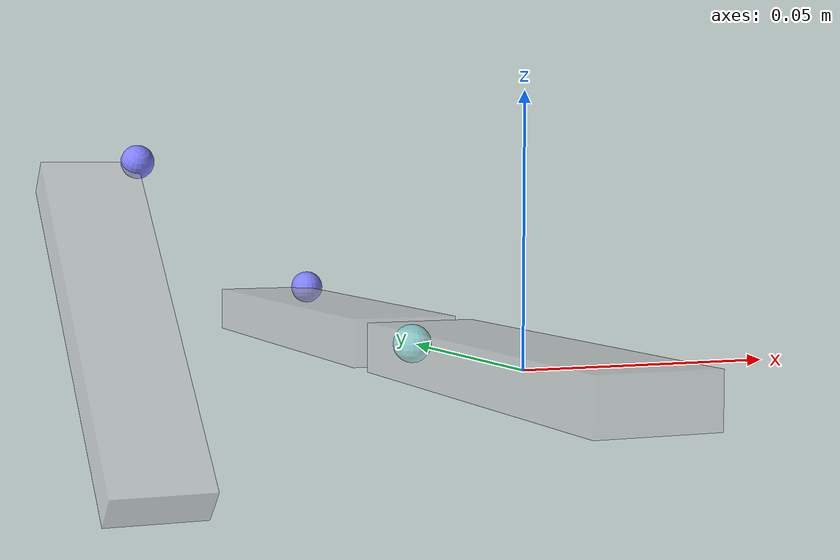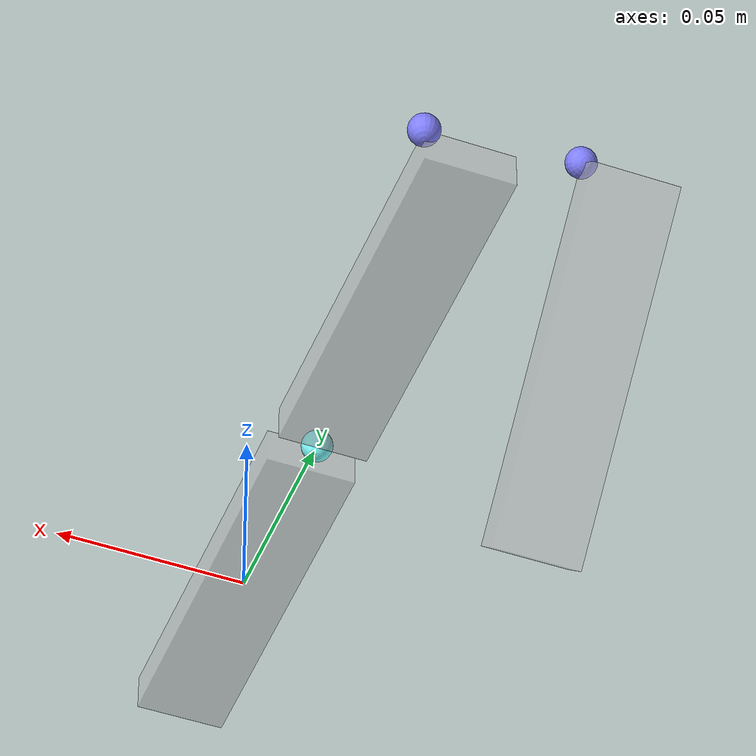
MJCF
<mujoco>
    <include file="basic_scene.xml" />

    <option gravity="0 0 0" />

    <worldbody>
        <body name="body1" pos="0 0 0">
            <geom name="geom1" mass="0.15" type="box" size="0.0115 0.048 0.005" rgba="0.8 0.8 0.8 0.5"/>
            <site name="site_center12" size="0.004" pos="0 0.052 0" rgba="0.5 0.99 0.99 1"/>

            <body name="body11" pos="0.00 0.104 0.00" euler="0 0 0">
            <joint name="joint_motor" pos="0 -0.052 0" ref="0" type="hinge" axis="1 0 0" armature="0.0065"/>
                <geom name="geom11" mass="0.15" type="box" pos="0 0 0" size="0.0115 0.048 0.005" rgba="0.8 0.8 0.8 0.5"/>
                <site name="site11" size="0.004" pos="0.0115 0.048 0.005" rgba="0.5 0.5 0.99 1"/>
            </body>

            <body name="body12" pos="-0.05 0.1 0.00" euler="45 0 0">
                <geom name="geom12" mass="0.15" type="box" pos="0 0 0" size="0.0115 0.048 0.005" rgba="0.8 0.8 0.8 0.5"/>
                <site name="site12" size="0.004" pos="0.0115 0.048 0.005" rgba="0.5 0.5 0.99 1"/>
            </body>
        </body>
    </worldbody>

    <actuator>
        <motor name="joint1" joint="joint_motor" gear="1" ctrllimited="true" ctrlrange="-3.00 3.00"  forcelimited="true" forcerange="-1.6 1.6"/>
    </actuator>
</mujoco>

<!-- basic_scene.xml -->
<mujoco>
    <compiler angle="degree"/>

    <asset>
        <texture type="skybox" builtin="gradient" rgb1="1 1 1" rgb2=".6 .8 1" width="256" height="256"/>
        <texture name="texplane" type="2d" builtin="checker" rgb1=".9 .9 .9" rgb2="1 1 1" width="512" height="512" mark="cross" markrgb=".1 .1 .1"/>

        <material name="matplane" reflectance="0.3" texture="texplane" texrepeat="2 2" texuniform="true"/>
    </asset>

    <option timestep="0.001" o_solimp="0.9 0.95 0.001 0.5 2" o_solref="0.02 1" cone="elliptic"
        impratio="3.0" noslip_iterations="5" noslip_tolerance="1e-8">
        <flag override="enable"/>
    </option>

    <default>
        <geom type="box" mass="0.001" rgba=".95 .95 .95 1"/>
    </default>
</mujoco>
